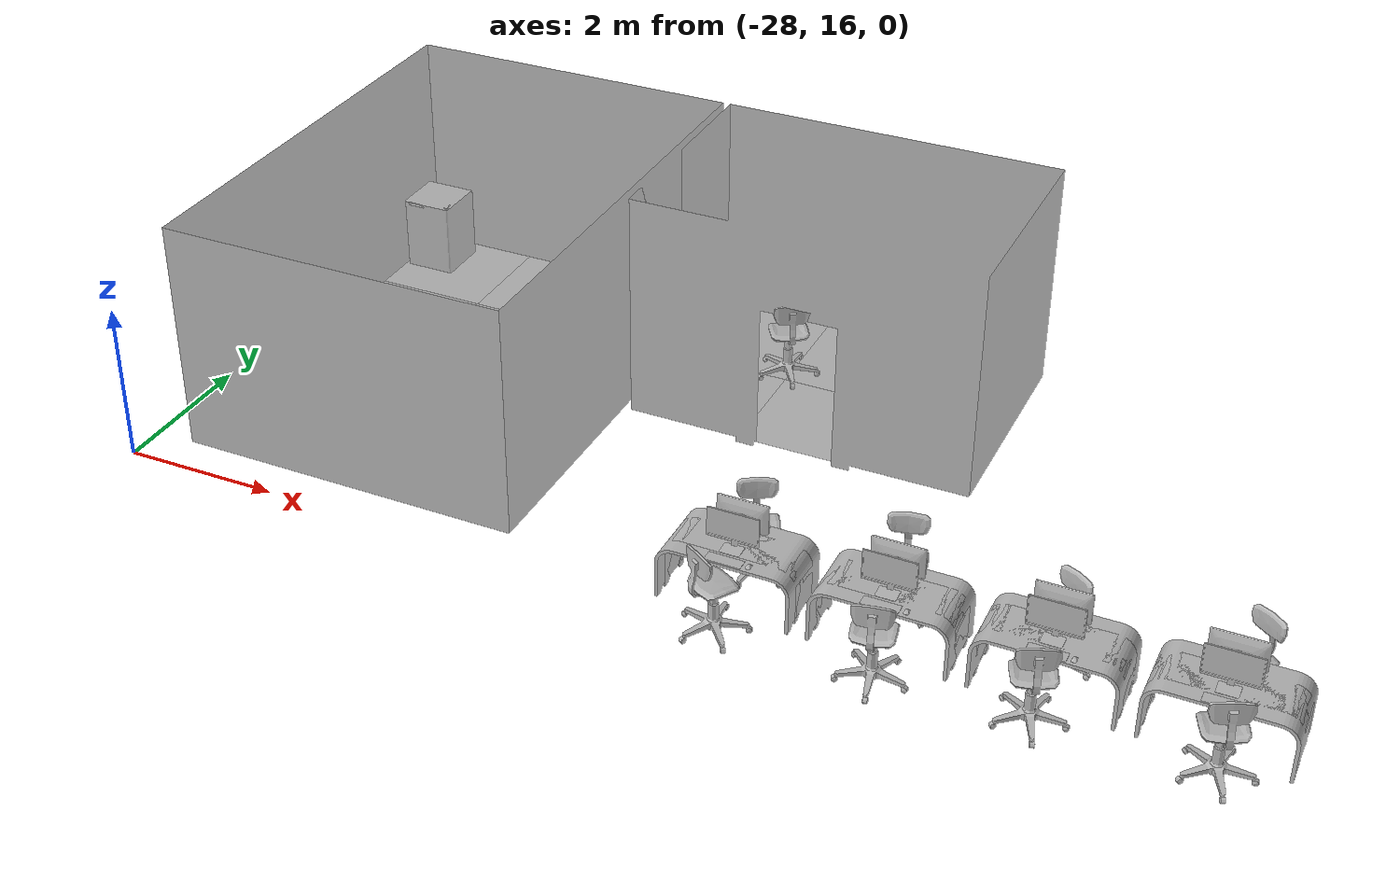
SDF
<sdf version="1.7">
 <world name="default">
  <model name="PrivateOfficeC">
   <static>1</static>
   <pose>-21.4 19.5 0 0 -0 3.14159</pose>
   <link name="link">
    <collision name="right_of_door">
     <pose>0.63 0.05 1.5 0 -0 0</pose>
     <geometry><box><size>1.74 0.1 3</size></box></geometry>
    </collision>
    <collision name="left_of_door">
     <pose>-2.13 0.05 1.5 0 -0 0</pose>
     <geometry><box><size>1.74 0.1 3</size></box></geometry>
    </collision>
    <collision name="top_of_door">
     <pose>-0.75 0.05 2.55 0 -0 0</pose>
     <geometry><box><size>1.5 0.1 0.9</size></box></geometry>
    </collision>
    <collision name="right">
     <pose>1.55 -1.5 1.5 0 -0 0</pose>
     <geometry><box><size>0.1 3 3</size></box></geometry>
    </collision>
    <collision name="left">
     <pose>-3.05 -1.5 1.5 0 -0 0</pose>
     <geometry><box><size>0.1 3 3</size></box></geometry>
    </collision>
    <collision name="back">
     <pose>-0.75 -3.05 1.5 0 -0 0</pose>
     <geometry><box><size>4.5 0.1 3</size></box></geometry>
    </collision>
    <visual name="visual">
     <geometry>
      <mesh><uri>model://media/meshes/office_small.obj</uri><scale>0.01 0.01 0.01</scale></mesh>
     </geometry>
    </visual>
    <visual name="floor_-1_-1">
     <pose>-1.5 -1.5 0 0 -0 0</pose>
     <geometry><mesh><uri>model://media/meshes/carpet.obj</uri><scale>0.01 0.01 0.01</scale></mesh></geometry>
    </visual>
    <visual name="floor_-1_0">
     <pose>-1.5 0 0 0 -0 0</pose>
     <geometry><mesh><uri>model://media/meshes/carpet.obj</uri><scale>0.01 0.01 0.01</scale></mesh></geometry>
    </visual>
    <visual name="floor_0_-1">
     <pose>0 -1.5 0 0 -0 0</pose>
     <geometry><mesh><uri>model://media/meshes/carpet.obj</uri><scale>0.01 0.01 0.01</scale></mesh></geometry>
    </visual>
    <visual name="floor_0_0">
     <geometry><mesh><uri>model://media/meshes/carpet.obj</uri><scale>0.01 0.01 0.01</scale></mesh></geometry>
    </visual>
    <visual name="floor_1_-1">
     <pose>1.5 -1.5 0 0 -0 0</pose>
     <geometry><mesh><uri>model://media/meshes/carpet.obj</uri><scale>0.01 0.01 0.01</scale></mesh></geometry>
    </visual>
    <visual name="floor_1_0">
     <pose>1.5 0 0 0 -0 0</pose>
     <geometry><mesh><uri>model://media/meshes/carpet.obj</uri><scale>0.01 0.01 0.01</scale></mesh></geometry>
    </visual>
   </link>
   <model name="corner_1">
    <static>1</static>
    <pose>1.5 -3 0 0 0 -1.5708</pose>
    <link name="link">
     <collision name="collision_x">
      <pose>-0.925 -0.375 0.38 0 -0 0</pose>
      <geometry><box><size>1.85 0.75 0.76</size></box></geometry>
     </collision>
     <collision name="collision_y">
      <pose>-0.375 -0.925 0.38 0 -0 0</pose>
      <geometry><box><size>0.75 1.85 0.76</size></box></geometry>
     </collision>
    </link>
    <frame name="computer::__model__" attached_to="computer::monitor">
     <pose relative_to="__model__">-1.22 -0.45 0.76 0 -0 0</pose>
    </frame>
    <static>1</static>
    <link name="computer::monitor">
     <visual name="visual">
      <geometry>
       <mesh><uri>model://computer/meshes/computer_monitor.obj</uri><scale>0.01 0.01 0.01</scale></mesh>
      </geometry>
     </visual>
     <pose relative_to="computer::__model__">0 0 0 0 -0 0</pose>
    </link>
    <link name="computer::tower">
     <pose relative_to="computer::__model__">0.5 0 0 0 -0 0</pose>
     <visual name="visual">
      <geometry>
       <mesh><uri>model://computer/meshes/computer_tower.obj</uri><scale>0.01 0.01 0.01</scale></mesh>
      </geometry>
     </visual>
    </link>
    <frame name="office_chair::__model__" attached_to="office_chair::link">
     <pose relative_to="__model__">-1.33792 -1.45663 0 0 -0 2.13743</pose>
    </frame>
    <static>1</static>
    <link name="office_chair::link">
     <collision name="collision">
      <pose>0.001581 0.000308 0.569888 0 -0 0</pose>
      <geometry><cylinder><radius>0.43</radius><length>1.14</length></cylinder></geometry>
     </collision>
     <visual name="visual">
      <geometry>
       <mesh><uri>model://office_chair/meshes/office_chair.dae</uri><scale>1.4 1.4 1.4</scale></mesh>
      </geometry>
     </visual>
     <pose relative_to="office_chair::__model__">0 0 0 0 -0 0</pose>
    </link>
   </model>
   <frame name="mini_fridge::__model__" attached_to="mini_fridge::link">
    <pose relative_to="__model__">1.1 -0.5 0 0 -0 3.14159</pose>
   </frame>
   <static>1</static>
   <link name="mini_fridge::link">
    <pose relative_to="mini_fridge::__model__">0 0 0 0 -0 1.5708</pose>
    <collision name="collision">
     <pose>-0.002041 0.002974 0.524481 0 -0 0</pose>
     <geometry><box><size>0.699729 0.708116 1.06716</size></box></geometry>
    </collision>
    <visual name="visual">
     <geometry>
      <mesh><uri>model://mini_fridge/meshes/mini_fridge.obj</uri><scale>0.02 0.02 0.02</scale></mesh>
     </geometry>
    </visual>
   </link>
  </model>
  <model name="PrivateOfficeD">
   <static>1</static>
   <pose>-23 19.5 0 0 0 -1.5708</pose>
   <link name="link">
    <collision name="right_of_door">
     <pose>1.38 0.05 1.5 0 -0 0</pose>
     <geometry><box><size>3.24 0.1 3</size></box></geometry>
    </collision>
    <collision name="left_of_door">
     <pose>-2.13 0.05 1.5 0 -0 0</pose>
     <geometry><box><size>1.74 0.1 3</size></box></geometry>
    </collision>
    <collision name="top_of_door">
     <pose>-0.75 0.05 2.55 0 -0 0</pose>
     <geometry><box><size>1.5 0.1 0.9</size></box></geometry>
    </collision>
    <collision name="right">
     <pose>3.05 -2.25 1.5 0 -0 0</pose>
     <geometry><box><size>0.1 4.5 3</size></box></geometry>
    </collision>
    <collision name="left">
     <pose>-3.05 -2.25 1.5 0 -0 0</pose>
     <geometry><box><size>0.1 4.5 3</size></box></geometry>
    </collision>
    <collision name="back">
     <pose>0 -4.55 1.5 0 -0 0</pose>
     <geometry><box><size>6 0.1 3</size></box></geometry>
    </collision>
    <visual name="visual">
     <geometry>
      <mesh><uri>model://media/meshes/office_large.obj</uri><scale>0.01 0.01 0.01</scale></mesh>
     </geometry>
    </visual>
    <visual name="floor_-1_-2">
     <pose>-1.5 -3 0 0 -0 0</pose>
     <geometry><mesh><uri>model://media/meshes/carpet.obj</uri><scale>0.01 0.01 0.01</scale></mesh></geometry>
    </visual>
    <visual name="floor_-1_-1">
     <pose>-1.5 -1.5 0 0 -0 0</pose>
     <geometry><mesh><uri>model://media/meshes/carpet.obj</uri><scale>0.01 0.01 0.01</scale></mesh></geometry>
    </visual>
    <visual name="floor_-1_0">
     <pose>-1.5 0 0 0 -0 0</pose>
     <geometry><mesh><uri>model://media/meshes/carpet.obj</uri><scale>0.01 0.01 0.01</scale></mesh></geometry>
    </visual>
    <visual name="floor_0_-2">
     <pose>0 -3 0 0 -0 0</pose>
     <geometry><mesh><uri>model://media/meshes/carpet.obj</uri><scale>0.01 0.01 0.01</scale></mesh></geometry>
    </visual>
    <visual name="floor_0_-1">
     <pose>0 -1.5 0 0 -0 0</pose>
     <geometry><mesh><uri>model://media/meshes/carpet.obj</uri><scale>0.01 0.01 0.01</scale></mesh></geometry>
    </visual>
    <visual name="floor_0_0">
     <geometry><mesh><uri>model://media/meshes/carpet.obj</uri><scale>0.01 0.01 0.01</scale></mesh></geometry>
    </visual>
    <visual name="floor_1_-2">
     <pose>1.5 -3 0 0 -0 0</pose>
     <geometry><mesh><uri>model://media/meshes/carpet.obj</uri><scale>0.01 0.01 0.01</scale></mesh></geometry>
    </visual>
    <visual name="floor_1_-1">
     <pose>1.5 -1.5 0 0 -0 0</pose>
     <geometry><mesh><uri>model://media/meshes/carpet.obj</uri><scale>0.01 0.01 0.01</scale></mesh></geometry>
    </visual>
    <visual name="floor_1_0">
     <pose>1.5 0 0 0 -0 0</pose>
     <geometry><mesh><uri>model://media/meshes/carpet.obj</uri><scale>0.01 0.01 0.01</scale></mesh></geometry>
    </visual>
    <visual name="floor_2_-2">
     <pose>3 -3 0 0 -0 0</pose>
     <geometry><mesh><uri>model://media/meshes/carpet.obj</uri><scale>0.01 0.01 0.01</scale></mesh></geometry>
    </visual>
    <visual name="floor_2_-1">
     <pose>3 -1.5 0 0 -0 0</pose>
     <geometry><mesh><uri>model://media/meshes/carpet.obj</uri><scale>0.01 0.01 0.01</scale></mesh></geometry>
    </visual>
    <visual name="floor_2_0">
     <pose>3 0 0 0 -0 0</pose>
     <geometry><mesh><uri>model://media/meshes/carpet.obj</uri><scale>0.01 0.01 0.01</scale></mesh></geometry>
    </visual>
   </link>
   <frame name="mini_fridge::__model__" attached_to="mini_fridge::link">
    <pose relative_to="__model__">-2.4 -4.1 0 0 -0 0</pose>
   </frame>
   <static>1</static>
   <link name="mini_fridge::link">
    <pose relative_to="mini_fridge::__model__">0 0 0 0 -0 1.5708</pose>
    <collision name="collision">
     <pose>-0.002041 0.002974 0.524481 0 -0 0</pose>
     <geometry><box><size>0.699729 0.708116 1.06716</size></box></geometry>
    </collision>
    <visual name="visual">
     <geometry>
      <mesh><uri>model://mini_fridge/meshes/mini_fridge.obj</uri><scale>0.02 0.02 0.02</scale></mesh>
     </geometry>
    </visual>
   </link>
   <model name="corner_1">
    <static>1</static>
    <pose>3 -4.5 0 0 0 -1.5708</pose>
    <frame name="computer::__model__" attached_to="computer::monitor">
     <pose relative_to="__model__">-1.22 -0.45 0.76 0 -0 0</pose>
    </frame>
    <static>1</static>
    <link name="computer::monitor">
     <visual name="visual">
      <geometry>
       <mesh><uri>model://computer/meshes/computer_monitor.obj</uri><scale>0.01 0.01 0.01</scale></mesh>
      </geometry>
     </visual>
     <pose relative_to="computer::__model__">0 0 0 0 -0 0</pose>
    </link>
    <link name="computer::tower">
     <pose relative_to="computer::__model__">0.5 0 0 0 -0 0</pose>
     <visual name="visual">
      <geometry>
       <mesh><uri>model://computer/meshes/computer_tower.obj</uri><scale>0.01 0.01 0.01</scale></mesh>
      </geometry>
     </visual>
    </link>
    <frame name="office_chair::__model__" attached_to="office_chair::link">
     <pose relative_to="__model__">-1.39201 -1.46798 0 0 -0 2.28135</pose>
    </frame>
    <static>1</static>
    <link name="office_chair::link">
     <collision name="collision">
      <pose>0.001581 0.000308 0.569888 0 -0 0</pose>
      <geometry><cylinder><radius>0.43</radius><length>1.14</length></cylinder></geometry>
     </collision>
     <visual name="visual">
      <geometry>
       <mesh><uri>model://office_chair/meshes/office_chair.dae</uri><scale>1.4 1.4 1.4</scale></mesh>
      </geometry>
     </visual>
     <pose relative_to="office_chair::__model__">0 0 0 0 -0 0</pose>
    </link>
   </model>
   <model name="corner_2">
    <static>1</static>
    <pose>3 0 0 0 -0 0</pose>
    <frame name="computer::__model__" attached_to="computer::monitor">
     <pose relative_to="__model__">-1.22 -0.45 0.76 0 -0 0</pose>
    </frame>
    <static>1</static>
    <link name="computer::monitor">
     <visual name="visual">
      <geometry>
       <mesh><uri>model://computer/meshes/computer_monitor.obj</uri><scale>0.01 0.01 0.01</scale></mesh>
      </geometry>
     </visual>
     <pose relative_to="computer::__model__">0 0 0 0 -0 0</pose>
    </link>
    <link name="computer::tower">
     <pose relative_to="computer::__model__">0.5 0 0 0 -0 0</pose>
     <visual name="visual">
      <geometry>
       <mesh><uri>model://computer/meshes/computer_tower.obj</uri><scale>0.01 0.01 0.01</scale></mesh>
      </geometry>
     </visual>
    </link>
    <frame name="office_chair::__model__" attached_to="office_chair::link">
     <pose relative_to="__model__">-1.17313 -1.96663 0 0 -0 2.82886</pose>
    </frame>
    <static>1</static>
    <link name="office_chair::link">
     <collision name="collision">
      <pose>0.001581 0.000308 0.569888 0 -0 0</pose>
      <geometry><cylinder><radius>0.43</radius><length>1.14</length></cylinder></geometry>
     </collision>
     <visual name="visual">
      <geometry>
       <mesh><uri>model://office_chair/meshes/office_chair.dae</uri><scale>1.4 1.4 1.4</scale></mesh>
      </geometry>
     </visual>
     <pose relative_to="office_chair::__model__">0 0 0 0 -0 0</pose>
    </link>
   </model>
  </model>
  <model name="PrivateCubicle_33">
   <static>1</static>
   <pose>-21 16.5 0 0 -0 0</pose>
   <frame name="desk_31::__model__" attached_to="desk_31::link">
    <pose relative_to="__model__">0.884 0.1 0.1 0 -0 0</pose>
   </frame>
   <static>1</static>
   <link name="desk_31::link">
    <visual name="visual">
     <geometry><mesh><uri>model://desk/meshes/desk.obj</uri><scale>0.001 0.001 0.001</scale></mesh></geometry>
    </visual>
    <pose relative_to="desk_31::__model__">0 0 0 0 -0 0</pose>
   </link>
   <link name="computer_31">
    <pose>0.884 0.15 0.78 0 -0 3.14159</pose>
    <visual name="monitor">
     <geometry>
      <mesh><uri>model://computer/meshes/computer_monitor.obj</uri><scale>0.01 0.01 0.01</scale></mesh>
     </geometry>
    </visual>
   </link>
   <link name="chair_31">
    <pose>0.879939 0.589703 0 0 -0 0.475958</pose>
    <visual name="visual">
     <geometry>
      <mesh><uri>model://office_chair/meshes/office_chair.dae</uri><scale>1.4 1.4 1.4</scale></mesh>
     </geometry>
    </visual>
   </link>
   <frame name="desk_32::__model__" attached_to="desk_32::link">
    <pose relative_to="__model__">0.884 -0.1 0.1 0 -0 3.14159</pose>
   </frame>
   <static>1</static>
   <link name="desk_32::link">
    <visual name="visual">
     <geometry><mesh><uri>model://desk/meshes/desk.obj</uri><scale>0.001 0.001 0.001</scale></mesh></geometry>
    </visual>
    <pose relative_to="desk_32::__model__">0 0 0 0 -0 0</pose>
   </link>
   <link name="computer_32">
    <pose>0.884 -0.15 0.78 0 -0 0</pose>
    <visual name="monitor">
     <geometry>
      <mesh><uri>model://computer/meshes/computer_monitor.obj</uri><scale>0.01 0.01 0.01</scale></mesh>
     </geometry>
    </visual>
   </link>
   <link name="chair_32">
    <pose>0.874833 -0.60359 0 0 -0 2.5714</pose>
    <visual name="visual">
     <geometry>
      <mesh><uri>model://office_chair/meshes/office_chair.dae</uri><scale>1.4 1.4 1.4</scale></mesh>
     </geometry>
    </visual>
   </link>
   <frame name="desk_33::__model__" attached_to="desk_33::link">
    <pose relative_to="__model__">2.684 0.1 0.1 0 -0 0</pose>
   </frame>
   <static>1</static>
   <link name="desk_33::link">
    <visual name="visual">
     <geometry><mesh><uri>model://desk/meshes/desk.obj</uri><scale>0.001 0.001 0.001</scale></mesh></geometry>
    </visual>
    <pose relative_to="desk_33::__model__">0 0 0 0 -0 0</pose>
   </link>
   <link name="computer_33">
    <pose>2.684 0.15 0.78 0 -0 3.14159</pose>
    <visual name="monitor">
     <geometry>
      <mesh><uri>model://computer/meshes/computer_monitor.obj</uri><scale>0.01 0.01 0.01</scale></mesh>
     </geometry>
    </visual>
   </link>
   <link name="chair_33">
    <pose>2.59609 0.672715 0 0 -0 0.255789</pose>
    <visual name="visual">
     <geometry>
      <mesh><uri>model://office_chair/meshes/office_chair.dae</uri><scale>1.4 1.4 1.4</scale></mesh>
     </geometry>
    </visual>
   </link>
   <frame name="desk_34::__model__" attached_to="desk_34::link">
    <pose relative_to="__model__">2.684 -0.1 0.1 0 -0 3.14159</pose>
   </frame>
   <static>1</static>
   <link name="desk_34::link">
    <visual name="visual">
     <geometry><mesh><uri>model://desk/meshes/desk.obj</uri><scale>0.001 0.001 0.001</scale></mesh></geometry>
    </visual>
    <pose relative_to="desk_34::__model__">0 0 0 0 -0 0</pose>
   </link>
   <link name="computer_34">
    <pose>2.684 -0.15 0.78 0 -0 0</pose>
    <visual name="monitor">
     <geometry>
      <mesh><uri>model://computer/meshes/computer_monitor.obj</uri><scale>0.01 0.01 0.01</scale></mesh>
     </geometry>
    </visual>
   </link>
   <link name="chair_34">
    <pose>2.72015 -0.627048 0 0 -0 -2.94495</pose>
    <visual name="visual">
     <geometry>
      <mesh><uri>model://office_chair/meshes/office_chair.dae</uri><scale>1.4 1.4 1.4</scale></mesh>
     </geometry>
    </visual>
   </link>
   <frame name="desk_35::__model__" attached_to="desk_35::link">
    <pose relative_to="__model__">4.484 0.1 0.1 0 -0 0</pose>
   </frame>
   <static>1</static>
   <link name="desk_35::link">
    <visual name="visual">
     <geometry><mesh><uri>model://desk/meshes/desk.obj</uri><scale>0.001 0.001 0.001</scale></mesh></geometry>
    </visual>
    <pose relative_to="desk_35::__model__">0 0 0 0 -0 0</pose>
   </link>
   <link name="computer_35">
    <pose>4.484 0.15 0.78 0 -0 3.14159</pose>
    <visual name="monitor">
     <geometry>
      <mesh><uri>model://computer/meshes/computer_monitor.obj</uri><scale>0.01 0.01 0.01</scale></mesh>
     </geometry>
    </visual>
   </link>
   <link name="chair_35">
    <pose>4.39783 0.438124 0 0 0 -0.54655</pose>
    <visual name="visual">
     <geometry>
      <mesh><uri>model://office_chair/meshes/office_chair.dae</uri><scale>1.4 1.4 1.4</scale></mesh>
     </geometry>
    </visual>
   </link>
   <frame name="desk_36::__model__" attached_to="desk_36::link">
    <pose relative_to="__model__">4.484 -0.1 0.1 0 -0 3.14159</pose>
   </frame>
   <static>1</static>
   <link name="desk_36::link">
    <visual name="visual">
     <geometry><mesh><uri>model://desk/meshes/desk.obj</uri><scale>0.001 0.001 0.001</scale></mesh></geometry>
    </visual>
    <pose relative_to="desk_36::__model__">0 0 0 0 -0 0</pose>
   </link>
   <link name="computer_36">
    <pose>4.484 -0.15 0.78 0 -0 0</pose>
    <visual name="monitor">
     <geometry>
      <mesh><uri>model://computer/meshes/computer_monitor.obj</uri><scale>0.01 0.01 0.01</scale></mesh>
     </geometry>
    </visual>
   </link>
   <link name="chair_36">
    <pose>4.41781 -0.559787 0 0 -0 -2.75526</pose>
    <visual name="visual">
     <geometry>
      <mesh><uri>model://office_chair/meshes/office_chair.dae</uri><scale>1.4 1.4 1.4</scale></mesh>
     </geometry>
    </visual>
   </link>
   <frame name="desk_37::__model__" attached_to="desk_37::link">
    <pose relative_to="__model__">6.284 0.1 0.1 0 -0 0</pose>
   </frame>
   <static>1</static>
   <link name="desk_37::link">
    <visual name="visual">
     <geometry><mesh><uri>model://desk/meshes/desk.obj</uri><scale>0.001 0.001 0.001</scale></mesh></geometry>
    </visual>
    <pose relative_to="desk_37::__model__">0 0 0 0 -0 0</pose>
   </link>
   <link name="computer_37">
    <pose>6.284 0.15 0.78 0 -0 3.14159</pose>
    <visual name="monitor">
     <geometry>
      <mesh><uri>model://computer/meshes/computer_monitor.obj</uri><scale>0.01 0.01 0.01</scale></mesh>
     </geometry>
    </visual>
   </link>
   <link name="chair_37">
    <pose>6.35489 0.636884 0 0 0 -0.592701</pose>
    <visual name="visual">
     <geometry>
      <mesh><uri>model://office_chair/meshes/office_chair.dae</uri><scale>1.4 1.4 1.4</scale></mesh>
     </geometry>
    </visual>
   </link>
   <frame name="desk_38::__model__" attached_to="desk_38::link">
    <pose relative_to="__model__">6.284 -0.1 0.1 0 -0 3.14159</pose>
   </frame>
   <static>1</static>
   <link name="desk_38::link">
    <visual name="visual">
     <geometry><mesh><uri>model://desk/meshes/desk.obj</uri><scale>0.001 0.001 0.001</scale></mesh></geometry>
    </visual>
    <pose relative_to="desk_38::__model__">0 0 0 0 -0 0</pose>
   </link>
   <link name="computer_38">
    <pose>6.284 -0.15 0.78 0 -0 0</pose>
    <visual name="monitor">
     <geometry>
      <mesh><uri>model://computer/meshes/computer_monitor.obj</uri><scale>0.01 0.01 0.01</scale></mesh>
     </geometry>
    </visual>
   </link>
   <link name="chair_38">
    <pose>6.34178 -0.53575 0 0 -0 -2.74084</pose>
    <visual name="visual">
     <geometry>
      <mesh><uri>model://office_chair/meshes/office_chair.dae</uri><scale>1.4 1.4 1.4</scale></mesh>
     </geometry>
    </visual>
   </link>
  </model>
 </world>
</sdf>
